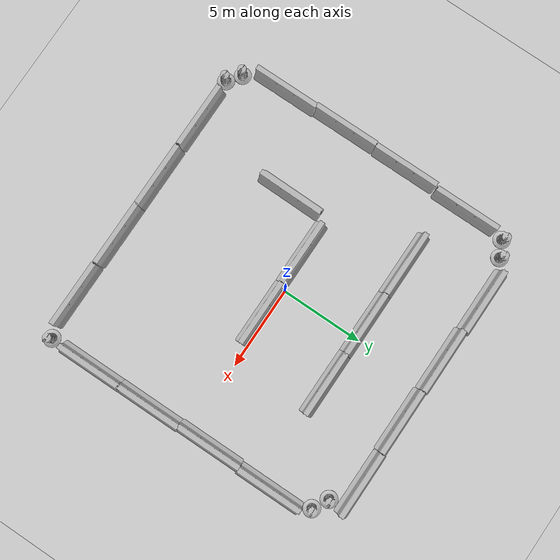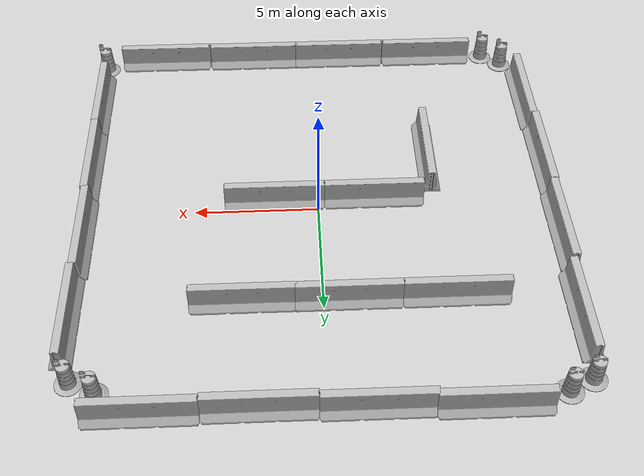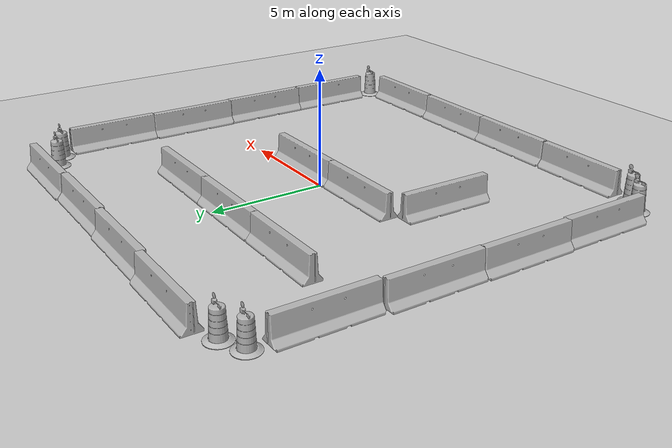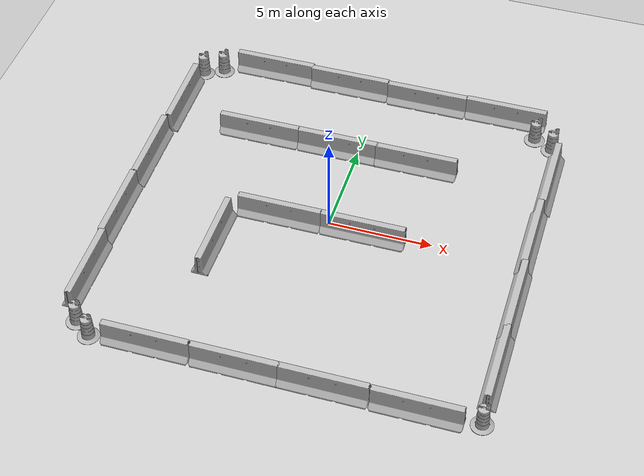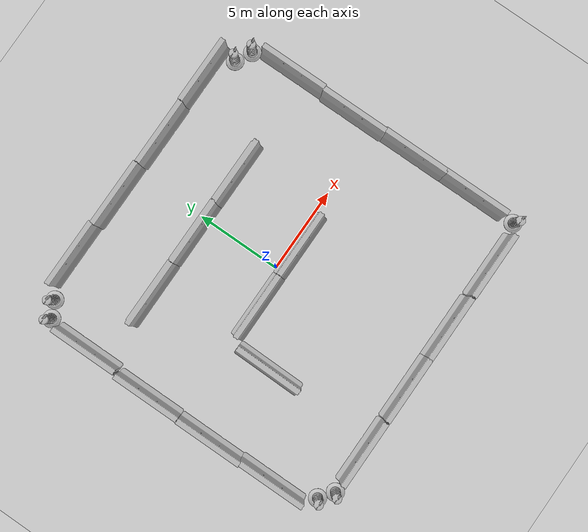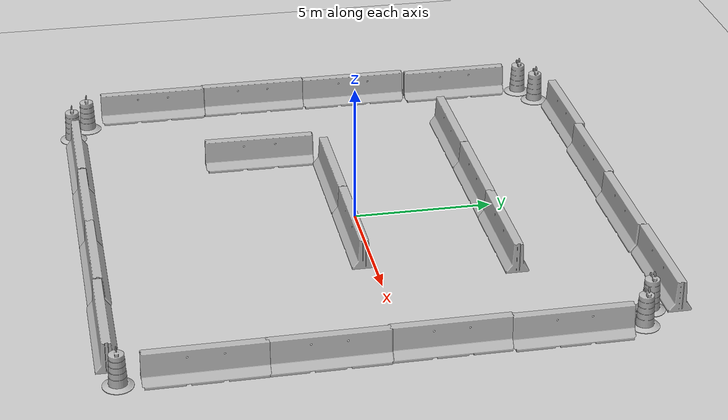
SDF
<sdf version="1.6">
 <world name="default">
  <light name="sun" type="directional">
   <pose>0 0 10 0 -0 0</pose>
   <diffuse>0.8 0.8 0.8 1</diffuse>
   <specular>0.2 0.2 0.2 1</specular>
   <attenuation>
    <range>1000</range>
    <constant>0.9</constant>
    <linear>0.01</linear>
    <quadratic>0.001</quadratic>
   </attenuation>
   <direction>-0.5 0.1 -0.9</direction>
  </light>
  <model name="ground_plane">
   <static>1</static>
   <link name="link">
    <collision name="collision">
     <geometry><plane><normal>0 0 1</normal><size>100 100</size></plane></geometry>
     <surface><friction><ode><mu>100</mu><mu2>50</mu2></ode></friction></surface>
    </collision>
    <visual name="visual">
     <cast_shadows>0</cast_shadows>
     <geometry><plane><normal>0 0 1</normal><size>100 100</size></plane></geometry>
     <material>
      <script><uri>file://media/materials/scripts/gazebo.material</uri><name>Gazebo/Grey</name></script>
     </material>
    </visual>
   </link>
  </model>
  <gravity>0 0 -9.8</gravity>
  <magnetic_field>6e-06 2.3e-05 -4.2e-05</magnetic_field>
  <atmosphere type="adiabatic"/>
  <physics name="default_physics" default="0" type="ode">
   <max_step_size>0.001</max_step_size>
   <real_time_factor>1</real_time_factor>
   <real_time_update_rate>1000</real_time_update_rate>
  </physics>
  <scene><ambient>0.4 0.4 0.4 1</ambient><background>0.7 0.7 0.7 1</background><shadows>1</shadows></scene>
  <spherical_coordinates>
   <surface_model>EARTH_WGS84</surface_model>
   <latitude_deg>0</latitude_deg>
   <longitude_deg>0</longitude_deg>
   <elevation>0</elevation>
   <heading_deg>0</heading_deg>
  </spherical_coordinates>
  <model name="jersey_barrier">
   <static>1</static>
   <link name="link">
    <visual name="visual">
     <geometry><mesh><uri>model://jersey_barrier/meshes/jersey_barrier.dae</uri></mesh></geometry>
    </visual>
    <collision name="upright">
     <pose>0 0 0.5715 0 -0 0</pose>
     <geometry><box><size>4.06542 0.3063 1.143</size></box></geometry>
    </collision>
   </link>
   <pose>-5.65677 9.4608 0 0 -0 0</pose>
  </model>
  <model name="jersey_barrier_clone">
   <static>1</static>
   <link name="link">
    <visual name="visual">
     <geometry><mesh><uri>model://jersey_barrier/meshes/jersey_barrier.dae</uri></mesh></geometry>
    </visual>
    <collision name="upright">
     <pose>0 0 0.5715 0 -0 0</pose>
     <geometry><box><size>4.06542 0.3063 1.143</size></box></geometry>
    </collision>
   </link>
   <pose>-1.65987 9.36075 0 0 -0 0</pose>
  </model>
  <model name="jersey_barrier_clone_0">
   <static>1</static>
   <link name="link">
    <visual name="visual">
     <geometry><mesh><uri>model://jersey_barrier/meshes/jersey_barrier.dae</uri></mesh></geometry>
    </visual>
    <collision name="upright">
     <pose>0 0 0.5715 0 -0 0</pose>
     <geometry><box><size>4.06542 0.3063 1.143</size></box></geometry>
    </collision>
   </link>
   <pose>2.39773 9.29085 0 0 -0 0</pose>
  </model>
  <model name="jersey_barrier_clone_1">
   <static>1</static>
   <link name="link">
    <visual name="visual">
     <geometry><mesh><uri>model://jersey_barrier/meshes/jersey_barrier.dae</uri></mesh></geometry>
    </visual>
    <collision name="upright">
     <pose>0 0 0.5715 0 -0 0</pose>
     <geometry><box><size>4.06542 0.3063 1.143</size></box></geometry>
    </collision>
   </link>
   <pose>6.45464 9.33993 0 0 -0 0</pose>
  </model>
  <model name="jersey_barrier_clone_3">
   <static>1</static>
   <link name="link">
    <visual name="visual">
     <geometry><mesh><uri>model://jersey_barrier/meshes/jersey_barrier.dae</uri></mesh></geometry>
    </visual>
    <collision name="upright">
     <pose>0 0 0.5715 0 -0 0</pose>
     <geometry><box><size>4.06542 0.3063 1.143</size></box></geometry>
    </collision>
   </link>
   <pose>9.44656 5.35522 0 0 0 -1.56865</pose>
  </model>
  <model name="jersey_barrier_clone_3_clone">
   <static>1</static>
   <link name="link">
    <visual name="visual">
     <geometry><mesh><uri>model://jersey_barrier/meshes/jersey_barrier.dae</uri></mesh></geometry>
    </visual>
    <collision name="upright">
     <pose>0 0 0.5715 0 -0 0</pose>
     <geometry><box><size>4.06542 0.3063 1.143</size></box></geometry>
    </collision>
   </link>
   <pose>9.3727 1.33119 0 0 0 -1.56865</pose>
  </model>
  <model name="jersey_barrier_clone_3_clone_0">
   <static>1</static>
   <link name="link">
    <visual name="visual">
     <geometry><mesh><uri>model://jersey_barrier/meshes/jersey_barrier.dae</uri></mesh></geometry>
    </visual>
    <collision name="upright">
     <pose>0 0 0.5715 0 -0 0</pose>
     <geometry><box><size>4.06542 0.3063 1.143</size></box></geometry>
    </collision>
   </link>
   <pose>9.4315 -2.6268 0 0 0 -1.56865</pose>
  </model>
  <model name="jersey_barrier_clone_3_clone_1">
   <static>1</static>
   <link name="link">
    <visual name="visual">
     <geometry><mesh><uri>model://jersey_barrier/meshes/jersey_barrier.dae</uri></mesh></geometry>
    </visual>
    <collision name="upright">
     <pose>0 0 0.5715 0 -0 0</pose>
     <geometry><box><size>4.06542 0.3063 1.143</size></box></geometry>
    </collision>
   </link>
   <pose>9.44969 -6.53485 0 0 0 -1.56865</pose>
  </model>
  <model name="jersey_barrier_clone_2_clone">
   <static>1</static>
   <link name="link">
    <visual name="visual">
     <geometry><mesh><uri>model://jersey_barrier/meshes/jersey_barrier.dae</uri></mesh></geometry>
    </visual>
    <collision name="upright">
     <pose>0 0 0.5715 0 -0 0</pose>
     <geometry><box><size>4.06542 0.3063 1.143</size></box></geometry>
    </collision>
   </link>
   <pose>6.70657 -9.54347 0 0 -0 0</pose>
  </model>
  <model name="jersey_barrier_clone_2_clone_0">
   <static>1</static>
   <link name="link">
    <visual name="visual">
     <geometry><mesh><uri>model://jersey_barrier/meshes/jersey_barrier.dae</uri></mesh></geometry>
    </visual>
    <collision name="upright">
     <pose>0 0 0.5715 0 -0 0</pose>
     <geometry><box><size>4.06542 0.3063 1.143</size></box></geometry>
    </collision>
   </link>
   <pose>2.59616 -9.50928 0 0 -0 0</pose>
  </model>
  <model name="jersey_barrier_clone_2_clone_1">
   <static>1</static>
   <link name="link">
    <visual name="visual">
     <geometry><mesh><uri>model://jersey_barrier/meshes/jersey_barrier.dae</uri></mesh></geometry>
    </visual>
    <collision name="upright">
     <pose>0 0 0.5715 0 -0 0</pose>
     <geometry><box><size>4.06542 0.3063 1.143</size></box></geometry>
    </collision>
   </link>
   <pose>-1.33414 -9.50852 0 0 -0 0</pose>
  </model>
  <model name="jersey_barrier_clone_2_clone_2">
   <static>1</static>
   <link name="link">
    <visual name="visual">
     <geometry><mesh><uri>model://jersey_barrier/meshes/jersey_barrier.dae</uri></mesh></geometry>
    </visual>
    <collision name="upright">
     <pose>0 0 0.5715 0 -0 0</pose>
     <geometry><box><size>4.06542 0.3063 1.143</size></box></geometry>
    </collision>
   </link>
   <pose>-5.44605 -9.49634 0 0 -0 0</pose>
  </model>
  <model name="jersey_barrier_clone_3_clone_1_clone">
   <static>1</static>
   <link name="link">
    <visual name="visual">
     <geometry><mesh><uri>model://jersey_barrier/meshes/jersey_barrier.dae</uri></mesh></geometry>
    </visual>
    <collision name="upright">
     <pose>0 0 0.5715 0 -0 0</pose>
     <geometry><box><size>4.06542 0.3063 1.143</size></box></geometry>
    </collision>
   </link>
   <pose>-9.54289 -6.33149 0 0 0 -1.56865</pose>
  </model>
  <model name="jersey_barrier_clone_3_clone_1_clone_0">
   <static>1</static>
   <link name="link">
    <visual name="visual">
     <geometry><mesh><uri>model://jersey_barrier/meshes/jersey_barrier.dae</uri></mesh></geometry>
    </visual>
    <collision name="upright">
     <pose>0 0 0.5715 0 -0 0</pose>
     <geometry><box><size>4.06542 0.3063 1.143</size></box></geometry>
    </collision>
   </link>
   <pose>-9.6221 -2.35336 0 0 0 -1.56865</pose>
  </model>
  <model name="jersey_barrier_clone_3_clone_1_clone_1">
   <static>1</static>
   <link name="link">
    <visual name="visual">
     <geometry><mesh><uri>model://jersey_barrier/meshes/jersey_barrier.dae</uri></mesh></geometry>
    </visual>
    <collision name="upright">
     <pose>0 0 0.5715 0 -0 0</pose>
     <geometry><box><size>4.06542 0.3063 1.143</size></box></geometry>
    </collision>
   </link>
   <pose>-9.58952 1.69745 0 0 0 -1.56865</pose>
  </model>
  <model name="jersey_barrier_clone_3_clone_1_clone_2">
   <static>1</static>
   <link name="link">
    <visual name="visual">
     <geometry><mesh><uri>model://jersey_barrier/meshes/jersey_barrier.dae</uri></mesh></geometry>
    </visual>
    <collision name="upright">
     <pose>0 0 0.5715 0 -0 0</pose>
     <geometry><box><size>4.06542 0.3063 1.143</size></box></geometry>
    </collision>
   </link>
   <pose>-9.44715 5.83721 0 0 0 -1.56865</pose>
  </model>
  <model name="Construction Barrel">
   <link name="link">
    <inertial>
     <pose>0 0 0.4 0 -0 0</pose>
     <mass>500</mass>
     <inertia><ixx>51.2096</ixx><iyy>51.2096</iyy><izz>25</izz><ixy>0</ixy><ixz>0</ixz><iyz>0</iyz></inertia>
    </inertial>
    <collision name="collision">
     <geometry><mesh><uri>model://construction_barrel/meshes/construction_barrel.dae</uri></mesh></geometry>
    </collision>
    <visual name="visual">
     <geometry><mesh><uri>model://construction_barrel/meshes/construction_barrel.dae</uri></mesh></geometry>
    </visual>
   </link>
   <pose>9.07447 7.9106 -0 0 -0 -5.2e-05</pose>
  </model>
  <model name="Construction Barrel_0">
   <link name="link">
    <inertial>
     <pose>0 0 0.4 0 -0 0</pose>
     <mass>500</mass>
     <inertia><ixx>51.2096</ixx><iyy>51.2096</iyy><izz>25</izz><ixy>0</ixy><ixz>0</ixz><iyz>0</iyz></inertia>
    </inertial>
    <collision name="collision">
     <geometry><mesh><uri>model://construction_barrel/meshes/construction_barrel.dae</uri></mesh></geometry>
    </collision>
    <visual name="visual">
     <geometry><mesh><uri>model://construction_barrel/meshes/construction_barrel.dae</uri></mesh></geometry>
    </visual>
   </link>
   <pose>8.12831 8.4164 -0 0 -0 -4.7e-05</pose>
  </model>
  <model name="Construction Barrel_1">
   <link name="link">
    <inertial>
     <pose>0 0 0.4 0 -0 0</pose>
     <mass>500</mass>
     <inertia><ixx>51.2096</ixx><iyy>51.2096</iyy><izz>25</izz><ixy>0</ixy><ixz>0</ixz><iyz>0</iyz></inertia>
    </inertial>
    <collision name="collision">
     <geometry><mesh><uri>model://construction_barrel/meshes/construction_barrel.dae</uri></mesh></geometry>
    </collision>
    <visual name="visual">
     <geometry><mesh><uri>model://construction_barrel/meshes/construction_barrel.dae</uri></mesh></geometry>
    </visual>
   </link>
   <pose>-9.2726 8.48395 -0 0 -0 -4.6e-05</pose>
  </model>
  <model name="Construction Barrel_2">
   <link name="link">
    <inertial>
     <pose>0 0 0.4 0 -0 0</pose>
     <mass>500</mass>
     <inertia><ixx>51.2096</ixx><iyy>51.2096</iyy><izz>25</izz><ixy>0</ixy><ixz>0</ixz><iyz>0</iyz></inertia>
    </inertial>
    <collision name="collision">
     <geometry><mesh><uri>model://construction_barrel/meshes/construction_barrel.dae</uri></mesh></geometry>
    </collision>
    <visual name="visual">
     <geometry><mesh><uri>model://construction_barrel/meshes/construction_barrel.dae</uri></mesh></geometry>
    </visual>
   </link>
   <pose>-8.3436 8.93857 -1e-06 4e-06 -2e-06 -3e-05</pose>
  </model>
  <model name="Construction Barrel_3">
   <link name="link">
    <inertial>
     <pose>0 0 0.4 0 -0 0</pose>
     <mass>500</mass>
     <inertia><ixx>51.2096</ixx><iyy>51.2096</iyy><izz>25</izz><ixy>0</ixy><ixz>0</ixz><iyz>0</iyz></inertia>
    </inertial>
    <collision name="collision">
     <geometry><mesh><uri>model://construction_barrel/meshes/construction_barrel.dae</uri></mesh></geometry>
    </collision>
    <visual name="visual">
     <geometry><mesh><uri>model://construction_barrel/meshes/construction_barrel.dae</uri></mesh></geometry>
    </visual>
   </link>
   <pose>9.45364 -9.29428 -0 0 -0 -4.2e-05</pose>
  </model>
  <model name="Construction Barrel_4">
   <link name="link">
    <inertial>
     <pose>0 0 0.4 0 -0 0</pose>
     <mass>500</mass>
     <inertia><ixx>51.2096</ixx><iyy>51.2096</iyy><izz>25</izz><ixy>0</ixy><ixz>0</ixz><iyz>0</iyz></inertia>
    </inertial>
    <collision name="collision">
     <geometry><mesh><uri>model://construction_barrel/meshes/construction_barrel.dae</uri></mesh></geometry>
    </collision>
    <visual name="visual">
     <geometry><mesh><uri>model://construction_barrel/meshes/construction_barrel.dae</uri></mesh></geometry>
    </visual>
   </link>
   <pose>-8.13314 -9.57171 0 2e-06 1e-06 -0.00045</pose>
  </model>
  <model name="Construction Barrel_5">
   <link name="link">
    <inertial>
     <pose>0 0 0.4 0 -0 0</pose>
     <mass>500</mass>
     <inertia><ixx>51.2096</ixx><iyy>51.2096</iyy><izz>25</izz><ixy>0</ixy><ixz>0</ixz><iyz>0</iyz></inertia>
    </inertial>
    <collision name="collision">
     <geometry><mesh><uri>model://construction_barrel/meshes/construction_barrel.dae</uri></mesh></geometry>
    </collision>
    <visual name="visual">
     <geometry><mesh><uri>model://construction_barrel/meshes/construction_barrel.dae</uri></mesh></geometry>
    </visual>
   </link>
   <pose>-8.93846 -8.96004 -2e-06 7e-06 -4e-06 -0.000348</pose>
  </model>
  <model name="jersey_barrier_0">
   <static>1</static>
   <link name="link">
    <visual name="visual">
     <geometry><mesh><uri>model://jersey_barrier/meshes/jersey_barrier.dae</uri></mesh></geometry>
    </visual>
    <collision name="upright">
     <pose>0 0 0.5715 0 -0 0</pose>
     <geometry><box><size>4.06542 0.3063 1.143</size></box></geometry>
    </collision>
   </link>
   <pose>-4.97429 4.73074 0 0 -0 0</pose>
  </model>
  <model name="jersey_barrier_0_clone">
   <static>1</static>
   <link name="link">
    <visual name="visual">
     <geometry><mesh><uri>model://jersey_barrier/meshes/jersey_barrier.dae</uri></mesh></geometry>
    </visual>
    <collision name="upright">
     <pose>0 0 0.5715 0 -0 0</pose>
     <geometry><box><size>4.06542 0.3063 1.143</size></box></geometry>
    </collision>
   </link>
   <pose>-0.93635 4.73131 0 0 -0 0</pose>
  </model>
  <model name="jersey_barrier_0_clone_0">
   <static>1</static>
   <link name="link">
    <visual name="visual">
     <geometry><mesh><uri>model://jersey_barrier/meshes/jersey_barrier.dae</uri></mesh></geometry>
    </visual>
    <collision name="upright">
     <pose>0 0 0.5715 0 -0 0</pose>
     <geometry><box><size>4.06542 0.3063 1.143</size></box></geometry>
    </collision>
   </link>
   <pose>2.99134 4.7208 0 0 -0 0</pose>
  </model>
  <model name="jersey_barrier_0_clone_1">
   <static>1</static>
   <link name="link">
    <visual name="visual">
     <geometry><mesh><uri>model://jersey_barrier/meshes/jersey_barrier.dae</uri></mesh></geometry>
    </visual>
    <collision name="upright">
     <pose>0 0 0.5715 0 -0 0</pose>
     <geometry><box><size>4.06542 0.3063 1.143</size></box></geometry>
    </collision>
   </link>
   <pose>-2.28125 -0.396276 0 0 -0 0</pose>
  </model>
  <model name="jersey_barrier_0_clone_1_clone">
   <static>1</static>
   <link name="link">
    <visual name="visual">
     <geometry><mesh><uri>model://jersey_barrier/meshes/jersey_barrier.dae</uri></mesh></geometry>
    </visual>
    <collision name="upright">
     <pose>0 0 0.5715 0 -0 0</pose>
     <geometry><box><size>4.06542 0.3063 1.143</size></box></geometry>
    </collision>
   </link>
   <pose>1.76519 -0.393386 -0 0 -0 0</pose>
  </model>
  <model name="jersey_barrier_0_clone_1_clone_clone">
   <static>1</static>
   <link name="link">
    <visual name="visual">
     <geometry><mesh><uri>model://jersey_barrier/meshes/jersey_barrier.dae</uri></mesh></geometry>
    </visual>
    <collision name="upright">
     <pose>0 0 0.5715 0 -0 0</pose>
     <geometry><box><size>4.06542 0.3063 1.143</size></box></geometry>
    </collision>
   </link>
   <pose>-4.70694 -2.78766 0 0 0 -1.58136</pose>
  </model>
  <model name="coke_can">
   <link name="link">
    <inertial>
     <pose>-0.01 -0.012 0.15 0 -0 0</pose>
     <mass>0.39</mass>
     <inertia><ixx>0.00058</ixx><ixy>0</ixy><ixz>0</ixz><iyy>0.00058</iyy><iyz>0</iyz><izz>0.00019</izz></inertia>
    </inertial>
    <collision name="collision">
     <pose>0 0 -0.46 0 -0 0</pose>
     <geometry><mesh><uri>model://coke_can/meshes/coke_can.dae</uri></mesh></geometry>
     <surface>
      <friction><ode><mu>1</mu><mu2>1</mu2></ode></friction>
      <contact><ode><kp>1e+07</kp><kd>1</kd><min_depth>0.001</min_depth><max_vel>0.1</max_vel></ode></contact>
     </surface>
    </collision>
    <visual name="visual">
     <pose>0 0 -0.46 0 -0 0</pose>
     <geometry><mesh><uri>model://coke_can/meshes/coke_can.dae</uri></mesh></geometry>
    </visual>
   </link>
   <pose>-3.00584 -2.50788 -0.004694 -0.043045 0.007276 -8.3e-05</pose>
  </model>
  <plugin name="gazebo_ros" filename="libgazebo_ros_state.so"><ros><namespace>/gazebo</namespace></ros></plugin>
 </world>
</sdf>
